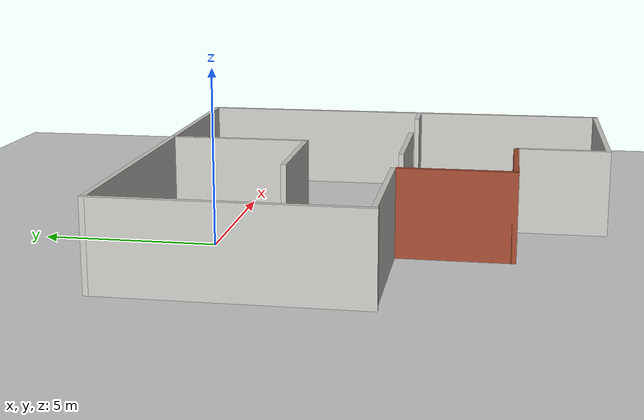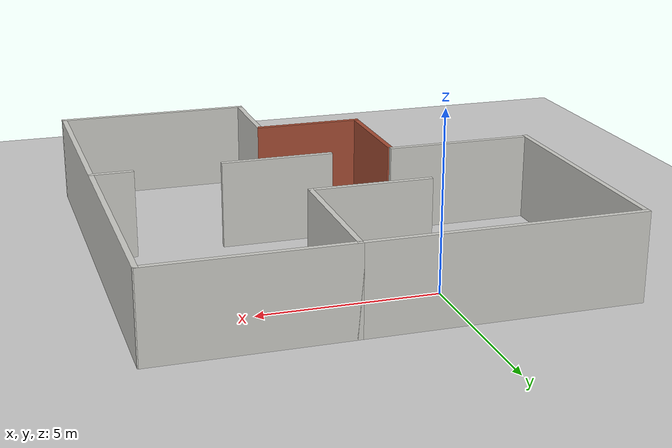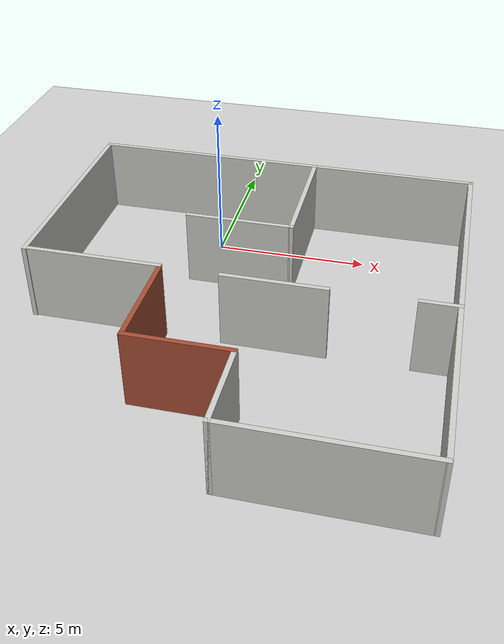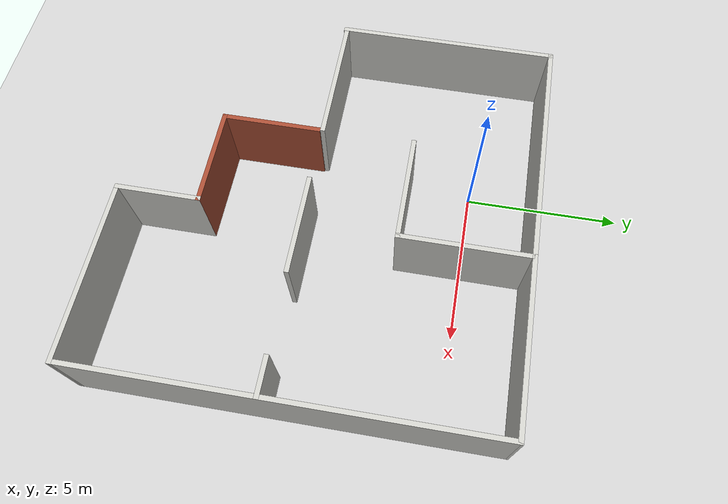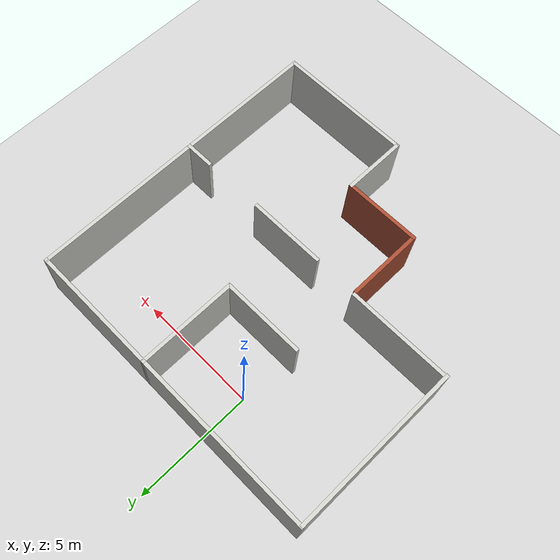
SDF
<sdf version="1.7">
 <world name="default">
  <light name="sun" type="directional">
   <pose>0 0 10 0 -0 0</pose>
   <diffuse>0.8 0.8 0.8 1</diffuse>
   <specular>0.2 0.2 0.2 1</specular>
   <attenuation>
    <range>1000</range>
    <constant>0.9</constant>
    <linear>0.01</linear>
    <quadratic>0.001</quadratic>
   </attenuation>
   <direction>-0.5 0.1 -0.9</direction>
   <spot><inner_angle>0</inner_angle><outer_angle>0</outer_angle><falloff>0</falloff></spot>
  </light>
  <model name="ground_plane">
   <static>1</static>
   <link name="link">
    <collision name="collision">
     <geometry><plane><normal>0 0 1</normal><size>100 100</size></plane></geometry>
     <surface>
      <contact><collide_bitmask>65535</collide_bitmask></contact>
      <friction><ode><mu>100</mu><mu2>50</mu2></ode></friction>
     </surface>
    </collision>
    <visual name="visual">
     <cast_shadows>0</cast_shadows>
     <geometry><plane><normal>0 0 1</normal><size>100 100</size></plane></geometry>
     <material>
      <script><uri>file://media/materials/scripts/gazebo.material</uri><name>Gazebo/Grey</name></script>
     </material>
    </visual>
   </link>
  </model>
  <gravity>0 0 -9.8</gravity>
  <magnetic_field>6e-06 2.3e-05 -4.2e-05</magnetic_field>
  <atmosphere type="adiabatic"/>
  <physics type="ode">
   <max_step_size>0.001</max_step_size>
   <real_time_factor>1</real_time_factor>
   <real_time_update_rate>1000</real_time_update_rate>
  </physics>
  <scene><ambient>0.4 0.4 0.4 1</ambient><background>0.7 0.7 0.7 1</background><shadows>1</shadows></scene>
  <spherical_coordinates>
   <surface_model>EARTH_WGS84</surface_model>
   <latitude_deg>0</latitude_deg>
   <longitude_deg>0</longitude_deg>
   <elevation>0</elevation>
   <heading_deg>0</heading_deg>
  </spherical_coordinates>
  <model name="robot_world">
   <link name="Wall_0">
    <pose>-0.568104 2.36 0 0 -0 0</pose>
    <visual name="Wall_0_Visual">
     <pose>0 0 1.25 0 -0 0</pose>
     <geometry><box><size>3.5 0.15 2.5</size></box></geometry>
     <material>
      <script><uri>file://media/materials/scripts/gazebo.material</uri><name>Gazebo/CeilingTiled</name></script>
      <ambient>0.760784 0.662745 0.627451 1</ambient>
      <shader type="pixel"/>
     </material>
     <meta><layer>0</layer></meta>
    </visual>
    <collision name="Wall_0_Collision">
     <pose>0 0 1.25 0 -0 0</pose>
     <geometry><box><size>3.5 0.15 2.5</size></box></geometry>
     <surface>
      <friction>
       <ode><mu>1</mu><mu2>1</mu2><fdir1>0 0 0</fdir1><slip1>0</slip1><slip2>0</slip2></ode>
       <torsional>
        <coefficient>1</coefficient>
        <patch_radius>0</patch_radius>
        <surface_radius>0</surface_radius>
        <use_patch_radius>1</use_patch_radius>
        <ode><slip>0</slip></ode>
       </torsional>
      </friction>
      <bounce><restitution_coefficient>0</restitution_coefficient><threshold>1e+06</threshold></bounce>
      <contact>
       <collide_without_contact>0</collide_without_contact>
       <collide_without_contact_bitmask>1</collide_without_contact_bitmask>
       <collide_bitmask>1</collide_bitmask>
       <ode>
        <soft_cfm>0</soft_cfm>
        <soft_erp>0.2</soft_erp>
        <kp>1e+13</kp>
        <kd>1</kd>
        <max_vel>0.01</max_vel>
        <min_depth>0</min_depth>
       </ode>
       <bullet>
        <split_impulse>1</split_impulse>
        <split_impulse_penetration_threshold>-0.01</split_impulse_penetration_threshold>
        <soft_cfm>0</soft_cfm>
        <soft_erp>0.2</soft_erp>
        <kp>1e+13</kp>
        <kd>1</kd>
       </bullet>
      </contact>
     </surface>
    </collision>
   </link>
   <link name="Wall_1">
    <pose>1.1069 4.41 0 0 -0 1.5708</pose>
    <visual name="Wall_1_Visual">
     <pose>0 0 1.25 0 -0 0</pose>
     <geometry><box><size>4.25 0.15 2.5</size></box></geometry>
     <material>
      <script><uri>file://media/materials/scripts/gazebo.material</uri><name>Gazebo/CeilingTiled</name></script>
      <ambient>0.760784 0.662745 0.627451 1</ambient>
      <shader type="pixel"/>
     </material>
     <meta><layer>0</layer></meta>
    </visual>
    <collision name="Wall_1_Collision">
     <pose>0 0 1.25 0 -0 0</pose>
     <geometry><box><size>4.25 0.15 2.5</size></box></geometry>
     <surface>
      <friction>
       <ode><mu>1</mu><mu2>1</mu2><fdir1>0 0 0</fdir1><slip1>0</slip1><slip2>0</slip2></ode>
       <torsional>
        <coefficient>1</coefficient>
        <patch_radius>0</patch_radius>
        <surface_radius>0</surface_radius>
        <use_patch_radius>1</use_patch_radius>
        <ode><slip>0</slip></ode>
       </torsional>
      </friction>
      <bounce><restitution_coefficient>0</restitution_coefficient><threshold>1e+06</threshold></bounce>
      <contact>
       <collide_without_contact>0</collide_without_contact>
       <collide_without_contact_bitmask>1</collide_without_contact_bitmask>
       <collide_bitmask>1</collide_bitmask>
       <ode>
        <soft_cfm>0</soft_cfm>
        <soft_erp>0.2</soft_erp>
        <kp>1e+13</kp>
        <kd>1</kd>
        <max_vel>0.01</max_vel>
        <min_depth>0</min_depth>
       </ode>
       <bullet>
        <split_impulse>1</split_impulse>
        <split_impulse_penetration_threshold>-0.01</split_impulse_penetration_threshold>
        <soft_cfm>0</soft_cfm>
        <soft_erp>0.2</soft_erp>
        <kp>1e+13</kp>
        <kd>1</kd>
       </bullet>
      </contact>
     </surface>
    </collision>
   </link>
   <link name="Wall_10">
    <pose>0.892896 -5.16 0 0 0 -1.5708</pose>
    <visual name="Wall_10_Visual">
     <pose>0 0 1.25 0 -0 0</pose>
     <geometry><box><size>2.75 0.15 2.5</size></box></geometry>
     <material>
      <script><uri>file://media/materials/scripts/gazebo.material</uri><name>Gazebo/CeilingTiled</name></script>
      <ambient>0.760784 0.662745 0.627451 1</ambient>
      <shader type="pixel"/>
     </material>
     <meta><layer>0</layer></meta>
    </visual>
    <collision name="Wall_10_Collision">
     <pose>0 0 1.25 0 -0 0</pose>
     <geometry><box><size>2.75 0.15 2.5</size></box></geometry>
     <surface>
      <friction>
       <ode><mu>1</mu><mu2>1</mu2><fdir1>0 0 0</fdir1><slip1>0</slip1><slip2>0</slip2></ode>
       <torsional>
        <coefficient>1</coefficient>
        <patch_radius>0</patch_radius>
        <surface_radius>0</surface_radius>
        <use_patch_radius>1</use_patch_radius>
        <ode><slip>0</slip></ode>
       </torsional>
      </friction>
      <bounce><restitution_coefficient>0</restitution_coefficient><threshold>1e+06</threshold></bounce>
      <contact>
       <collide_without_contact>0</collide_without_contact>
       <collide_without_contact_bitmask>1</collide_without_contact_bitmask>
       <collide_bitmask>1</collide_bitmask>
       <ode>
        <soft_cfm>0</soft_cfm>
        <soft_erp>0.2</soft_erp>
        <kp>1e+13</kp>
        <kd>1</kd>
        <max_vel>0.01</max_vel>
        <min_depth>0</min_depth>
       </ode>
       <bullet>
        <split_impulse>1</split_impulse>
        <split_impulse_penetration_threshold>-0.01</split_impulse_penetration_threshold>
        <soft_cfm>0</soft_cfm>
        <soft_erp>0.2</soft_erp>
        <kp>1e+13</kp>
        <kd>1</kd>
       </bullet>
      </contact>
     </surface>
    </collision>
   </link>
   <link name="Wall_11">
    <pose>3.6929 -6.46 0 0 -0 0</pose>
    <visual name="Wall_11_Visual">
     <pose>0 0 1.25 0 -0 0</pose>
     <geometry><box><size>5.75 0.15 2.5</size></box></geometry>
     <material>
      <script><uri>file://media/materials/scripts/gazebo.material</uri><name>Gazebo/CeilingTiled</name></script>
      <ambient>0.760784 0.662745 0.627451 1</ambient>
      <shader type="pixel"/>
     </material>
     <meta><layer>0</layer></meta>
    </visual>
    <collision name="Wall_11_Collision">
     <pose>0 0 1.25 0 -0 0</pose>
     <geometry><box><size>5.75 0.15 2.5</size></box></geometry>
     <surface>
      <friction>
       <ode><mu>1</mu><mu2>1</mu2><fdir1>0 0 0</fdir1><slip1>0</slip1><slip2>0</slip2></ode>
       <torsional>
        <coefficient>1</coefficient>
        <patch_radius>0</patch_radius>
        <surface_radius>0</surface_radius>
        <use_patch_radius>1</use_patch_radius>
        <ode><slip>0</slip></ode>
       </torsional>
      </friction>
      <bounce><restitution_coefficient>0</restitution_coefficient><threshold>1e+06</threshold></bounce>
      <contact>
       <collide_without_contact>0</collide_without_contact>
       <collide_without_contact_bitmask>1</collide_without_contact_bitmask>
       <collide_bitmask>1</collide_bitmask>
       <ode>
        <soft_cfm>0</soft_cfm>
        <soft_erp>0.2</soft_erp>
        <kp>1e+13</kp>
        <kd>1</kd>
        <max_vel>0.01</max_vel>
        <min_depth>0</min_depth>
       </ode>
       <bullet>
        <split_impulse>1</split_impulse>
        <split_impulse_penetration_threshold>-0.01</split_impulse_penetration_threshold>
        <soft_cfm>0</soft_cfm>
        <soft_erp>0.2</soft_erp>
        <kp>1e+13</kp>
        <kd>1</kd>
       </bullet>
      </contact>
     </surface>
    </collision>
   </link>
   <link name="Wall_14">
    <pose>3.7819 6.46 0 0 -0 0</pose>
    <visual name="Wall_14_Visual">
     <pose>0 0 1.25 0 -0 0</pose>
     <geometry><box><size>5.5 0.15 2.5</size></box></geometry>
     <material>
      <script><uri>file://media/materials/scripts/gazebo.material</uri><name>Gazebo/CeilingTiled</name></script>
      <ambient>0.760784 0.662745 0.627451 1</ambient>
      <shader type="pixel"/>
     </material>
     <meta><layer>0</layer></meta>
    </visual>
    <collision name="Wall_14_Collision">
     <pose>0 0 1.25 0 -0 0</pose>
     <geometry><box><size>5.5 0.15 2.5</size></box></geometry>
     <surface>
      <friction>
       <ode><mu>1</mu><mu2>1</mu2><fdir1>0 0 0</fdir1><slip1>0</slip1><slip2>0</slip2></ode>
       <torsional>
        <coefficient>1</coefficient>
        <patch_radius>0</patch_radius>
        <surface_radius>0</surface_radius>
        <use_patch_radius>1</use_patch_radius>
        <ode><slip>0</slip></ode>
       </torsional>
      </friction>
      <bounce><restitution_coefficient>0</restitution_coefficient><threshold>1e+06</threshold></bounce>
      <contact>
       <collide_without_contact>0</collide_without_contact>
       <collide_without_contact_bitmask>1</collide_without_contact_bitmask>
       <collide_bitmask>1</collide_bitmask>
       <ode>
        <soft_cfm>0</soft_cfm>
        <soft_erp>0.2</soft_erp>
        <kp>1e+13</kp>
        <kd>1</kd>
        <max_vel>0.01</max_vel>
        <min_depth>0</min_depth>
       </ode>
       <bullet>
        <split_impulse>1</split_impulse>
        <split_impulse_penetration_threshold>-0.01</split_impulse_penetration_threshold>
        <soft_cfm>0</soft_cfm>
        <soft_erp>0.2</soft_erp>
        <kp>1e+13</kp>
        <kd>1</kd>
       </bullet>
      </contact>
     </surface>
    </collision>
   </link>
   <link name="Wall_15">
    <pose>6.4749 0 0 0 0 -1.56801</pose>
    <visual name="Wall_15_Visual">
     <pose>0 0 1.25 0 -0 0</pose>
     <geometry><box><size>13.0698 0.15 2.5</size></box></geometry>
     <material>
      <script><uri>file://media/materials/scripts/gazebo.material</uri><name>Gazebo/CeilingTiled</name></script>
      <ambient>0.760784 0.662745 0.627451 1</ambient>
      <shader type="pixel"/>
     </material>
     <meta><layer>0</layer></meta>
    </visual>
    <collision name="Wall_15_Collision">
     <pose>0 0 1.25 0 -0 0</pose>
     <geometry><box><size>13.0698 0.15 2.5</size></box></geometry>
     <surface>
      <friction>
       <ode><mu>1</mu><mu2>1</mu2><fdir1>0 0 0</fdir1><slip1>0</slip1><slip2>0</slip2></ode>
       <torsional>
        <coefficient>1</coefficient>
        <patch_radius>0</patch_radius>
        <surface_radius>0</surface_radius>
        <use_patch_radius>1</use_patch_radius>
        <ode><slip>0</slip></ode>
       </torsional>
      </friction>
      <bounce><restitution_coefficient>0</restitution_coefficient><threshold>1e+06</threshold></bounce>
      <contact>
       <collide_without_contact>0</collide_without_contact>
       <collide_without_contact_bitmask>1</collide_without_contact_bitmask>
       <collide_bitmask>1</collide_bitmask>
       <ode>
        <soft_cfm>0</soft_cfm>
        <soft_erp>0.2</soft_erp>
        <kp>1e+13</kp>
        <kd>1</kd>
        <max_vel>0.01</max_vel>
        <min_depth>0</min_depth>
       </ode>
       <bullet>
        <split_impulse>1</split_impulse>
        <split_impulse_penetration_threshold>-0.01</split_impulse_penetration_threshold>
        <soft_cfm>0</soft_cfm>
        <soft_erp>0.2</soft_erp>
        <kp>1e+13</kp>
        <kd>1</kd>
       </bullet>
      </contact>
     </surface>
    </collision>
   </link>
   <link name="Wall_2">
    <pose>-2.6931 6.46 0 0 -0 3.14159</pose>
    <visual name="Wall_2_Visual">
     <pose>0 0 1.25 0 -0 0</pose>
     <geometry><box><size>7.75 0.15 2.5</size></box></geometry>
     <material>
      <script><uri>file://media/materials/scripts/gazebo.material</uri><name>Gazebo/CeilingTiled</name></script>
      <ambient>0.760784 0.662745 0.627451 1</ambient>
      <shader type="pixel"/>
     </material>
     <meta><layer>0</layer></meta>
    </visual>
    <collision name="Wall_2_Collision">
     <pose>0 0 1.25 0 -0 0</pose>
     <geometry><box><size>7.75 0.15 2.5</size></box></geometry>
     <surface>
      <friction>
       <ode><mu>1</mu><mu2>1</mu2><fdir1>0 0 0</fdir1><slip1>0</slip1><slip2>0</slip2></ode>
       <torsional>
        <coefficient>1</coefficient>
        <patch_radius>0</patch_radius>
        <surface_radius>0</surface_radius>
        <use_patch_radius>1</use_patch_radius>
        <ode><slip>0</slip></ode>
       </torsional>
      </friction>
      <bounce><restitution_coefficient>0</restitution_coefficient><threshold>1e+06</threshold></bounce>
      <contact>
       <collide_without_contact>0</collide_without_contact>
       <collide_without_contact_bitmask>1</collide_without_contact_bitmask>
       <collide_bitmask>1</collide_bitmask>
       <ode>
        <soft_cfm>0</soft_cfm>
        <soft_erp>0.2</soft_erp>
        <kp>1e+13</kp>
        <kd>1</kd>
        <max_vel>0.01</max_vel>
        <min_depth>0</min_depth>
       </ode>
       <bullet>
        <split_impulse>1</split_impulse>
        <split_impulse_penetration_threshold>-0.01</split_impulse_penetration_threshold>
        <soft_cfm>0</soft_cfm>
        <soft_erp>0.2</soft_erp>
        <kp>1e+13</kp>
        <kd>1</kd>
       </bullet>
      </contact>
     </surface>
    </collision>
   </link>
   <link name="Wall_26">
    <pose>1.2049 -0.653 0 0 -0 0</pose>
    <visual name="Wall_26_Visual">
     <pose>0 0 1.25 0 -0 0</pose>
     <geometry><box><size>3.25 0.15 2.5</size></box></geometry>
     <material>
      <script><uri>file://media/materials/scripts/gazebo.material</uri><name>Gazebo/CeilingTiled</name></script>
      <ambient>0.760784 0.662745 0.627451 1</ambient>
      <shader type="pixel"/>
     </material>
     <meta><layer>0</layer></meta>
    </visual>
    <collision name="Wall_26_Collision">
     <pose>0 0 1.25 0 -0 0</pose>
     <geometry><box><size>3.25 0.15 2.5</size></box></geometry>
     <surface>
      <friction>
       <ode><mu>1</mu><mu2>1</mu2><fdir1>0 0 0</fdir1><slip1>0</slip1><slip2>0</slip2></ode>
       <torsional>
        <coefficient>1</coefficient>
        <patch_radius>0</patch_radius>
        <surface_radius>0</surface_radius>
        <use_patch_radius>1</use_patch_radius>
        <ode><slip>0</slip></ode>
       </torsional>
      </friction>
      <bounce><restitution_coefficient>0</restitution_coefficient><threshold>1e+06</threshold></bounce>
      <contact>
       <collide_without_contact>0</collide_without_contact>
       <collide_without_contact_bitmask>1</collide_without_contact_bitmask>
       <collide_bitmask>1</collide_bitmask>
       <ode>
        <soft_cfm>0</soft_cfm>
        <soft_erp>0.2</soft_erp>
        <kp>1e+13</kp>
        <kd>1</kd>
        <max_vel>0.01</max_vel>
        <min_depth>0</min_depth>
       </ode>
       <bullet>
        <split_impulse>1</split_impulse>
        <split_impulse_penetration_threshold>-0.01</split_impulse_penetration_threshold>
        <soft_cfm>0</soft_cfm>
        <soft_erp>0.2</soft_erp>
        <kp>1e+13</kp>
        <kd>1</kd>
       </bullet>
      </contact>
     </surface>
    </collision>
   </link>
   <link name="Wall_3">
    <pose>-6.4931 2.91 0 0 0 -1.5708</pose>
    <visual name="Wall_3_Visual">
     <pose>0 0 1.25 0 -0 0</pose>
     <geometry><box><size>7.25 0.15 2.5</size></box></geometry>
     <material>
      <script><uri>file://media/materials/scripts/gazebo.material</uri><name>Gazebo/CeilingTiled</name></script>
      <ambient>0.760784 0.662745 0.627451 1</ambient>
      <shader type="pixel"/>
     </material>
     <meta><layer>0</layer></meta>
    </visual>
    <collision name="Wall_3_Collision">
     <pose>0 0 1.25 0 -0 0</pose>
     <geometry><box><size>7.25 0.15 2.5</size></box></geometry>
     <surface>
      <friction>
       <ode><mu>1</mu><mu2>1</mu2><fdir1>0 0 0</fdir1><slip1>0</slip1><slip2>0</slip2></ode>
       <torsional>
        <coefficient>1</coefficient>
        <patch_radius>0</patch_radius>
        <surface_radius>0</surface_radius>
        <use_patch_radius>1</use_patch_radius>
        <ode><slip>0</slip></ode>
       </torsional>
      </friction>
      <bounce><restitution_coefficient>0</restitution_coefficient><threshold>1e+06</threshold></bounce>
      <contact>
       <collide_without_contact>0</collide_without_contact>
       <collide_without_contact_bitmask>1</collide_without_contact_bitmask>
       <collide_bitmask>1</collide_bitmask>
       <ode>
        <soft_cfm>0</soft_cfm>
        <soft_erp>0.2</soft_erp>
        <kp>1e+13</kp>
        <kd>1</kd>
        <max_vel>0.01</max_vel>
        <min_depth>0</min_depth>
       </ode>
       <bullet>
        <split_impulse>1</split_impulse>
        <split_impulse_penetration_threshold>-0.01</split_impulse_penetration_threshold>
        <soft_cfm>0</soft_cfm>
        <soft_erp>0.2</soft_erp>
        <kp>1e+13</kp>
        <kd>1</kd>
       </bullet>
      </contact>
     </surface>
    </collision>
   </link>
   <link name="Wall_31">
    <pose>5.9239 -0.627 0 0 -0 0</pose>
    <visual name="Wall_31_Visual">
     <pose>0 0 1.25 0 -0 0</pose>
     <geometry><box><size>1.25 0.15 2.5</size></box></geometry>
     <material>
      <script><uri>file://media/materials/scripts/gazebo.material</uri><name>Gazebo/CeilingTiled</name></script>
      <ambient>0.760784 0.662745 0.627451 1</ambient>
      <shader type="pixel"/>
     </material>
     <meta><layer>0</layer></meta>
    </visual>
    <collision name="Wall_31_Collision">
     <pose>0 0 1.25 0 -0 0</pose>
     <geometry><box><size>1.25 0.15 2.5</size></box></geometry>
     <surface>
      <friction>
       <ode><mu>1</mu><mu2>1</mu2><fdir1>0 0 0</fdir1><slip1>0</slip1><slip2>0</slip2></ode>
       <torsional>
        <coefficient>1</coefficient>
        <patch_radius>0</patch_radius>
        <surface_radius>0</surface_radius>
        <use_patch_radius>1</use_patch_radius>
        <ode><slip>0</slip></ode>
       </torsional>
      </friction>
      <bounce><restitution_coefficient>0</restitution_coefficient><threshold>1e+06</threshold></bounce>
      <contact>
       <collide_without_contact>0</collide_without_contact>
       <collide_without_contact_bitmask>1</collide_without_contact_bitmask>
       <collide_bitmask>1</collide_bitmask>
       <ode>
        <soft_cfm>0</soft_cfm>
        <soft_erp>0.2</soft_erp>
        <kp>1e+13</kp>
        <kd>1</kd>
        <max_vel>0.01</max_vel>
        <min_depth>0</min_depth>
       </ode>
       <bullet>
        <split_impulse>1</split_impulse>
        <split_impulse_penetration_threshold>-0.01</split_impulse_penetration_threshold>
        <soft_cfm>0</soft_cfm>
        <soft_erp>0.2</soft_erp>
        <kp>1e+13</kp>
        <kd>1</kd>
       </bullet>
      </contact>
     </surface>
    </collision>
   </link>
   <link name="Wall_6_clone">
    <pose>-4.3053 -0.607442 0 0 -0 0</pose>
    <inertial>
     <mass>1</mass>
     <pose>-0.1 0 0 0 -0 0</pose>
     <inertia><ixx>1</ixx><ixy>0</ixy><ixz>0</ixz><iyy>1</iyy><iyz>0</iyz><izz>1</izz></inertia>
    </inertial>
    <visual name="Wall_6_Visual">
     <pose>0 0 1.25 0 -0 0</pose>
     <geometry><box><size>4.25 0.15 2.5</size></box></geometry>
     <material>
      <script><uri>file://media/materials/scripts/gazebo.material</uri><name>Gazebo/CeilingTiled</name></script>
      <ambient>0.761 0.663 0.627 1</ambient>
      <shader type="pixel"><normal_map>__default__</normal_map></shader>
      <diffuse>1 1 1 1</diffuse>
      <specular>0 0 0 1</specular>
      <emissive>0 0 0 1</emissive>
     </material>
     <meta><layer>0</layer></meta>
    </visual>
    <collision name="Wall_6_Collision">
     <pose>0 0 1.25 0 -0 0</pose>
     <geometry><box><size>4.25 0.15 2.5</size></box></geometry>
     <surface>
      <friction>
       <ode><mu>1</mu><mu2>1</mu2><fdir1>0 0 0</fdir1><slip1>0</slip1><slip2>0</slip2></ode>
       <torsional>
        <coefficient>1</coefficient>
        <patch_radius>0</patch_radius>
        <surface_radius>0</surface_radius>
        <use_patch_radius>1</use_patch_radius>
        <ode><slip>0</slip></ode>
       </torsional>
      </friction>
      <bounce><restitution_coefficient>0</restitution_coefficient><threshold>1e+06</threshold></bounce>
      <contact>
       <collide_without_contact>0</collide_without_contact>
       <collide_without_contact_bitmask>1</collide_without_contact_bitmask>
       <collide_bitmask>1</collide_bitmask>
       <ode>
        <soft_cfm>0</soft_cfm>
        <soft_erp>0.2</soft_erp>
        <kp>1e+13</kp>
        <kd>1</kd>
        <max_vel>0.01</max_vel>
        <min_depth>0</min_depth>
       </ode>
       <bullet>
        <split_impulse>1</split_impulse>
        <split_impulse_penetration_threshold>-0.01</split_impulse_penetration_threshold>
        <soft_cfm>0</soft_cfm>
        <soft_erp>0.2</soft_erp>
        <kp>1e+13</kp>
        <kd>1</kd>
       </bullet>
      </contact>
     </surface>
    </collision>
   </link>
   <link name="Wall_8">
    <pose>-2.2071 -2.31 0 0 0 -1.5708</pose>
    <visual name="Wall_8_Visual">
     <pose>0 0 1.25 0 -0 0</pose>
     <geometry><box><size>3.25 0.15 2.5</size></box></geometry>
     <material>
      <script><uri>file://media/materials/scripts/gazebo.material</uri><name>Gazebo/Bricks</name></script>
      <ambient>0.760784 0.662745 0.627451 1</ambient>
      <shader type="pixel"/>
     </material>
     <meta><layer>0</layer></meta>
    </visual>
    <collision name="Wall_8_Collision">
     <pose>0 0 1.25 0 -0 0</pose>
     <geometry><box><size>3.25 0.15 2.5</size></box></geometry>
     <surface>
      <friction>
       <ode><mu>1</mu><mu2>1</mu2><fdir1>0 0 0</fdir1><slip1>0</slip1><slip2>0</slip2></ode>
       <torsional>
        <coefficient>1</coefficient>
        <patch_radius>0</patch_radius>
        <surface_radius>0</surface_radius>
        <use_patch_radius>1</use_patch_radius>
        <ode><slip>0</slip></ode>
       </torsional>
      </friction>
      <bounce><restitution_coefficient>0</restitution_coefficient><threshold>1e+06</threshold></bounce>
      <contact>
       <collide_without_contact>0</collide_without_contact>
       <collide_without_contact_bitmask>1</collide_without_contact_bitmask>
       <collide_bitmask>1</collide_bitmask>
       <ode>
        <soft_cfm>0</soft_cfm>
        <soft_erp>0.2</soft_erp>
        <kp>1e+13</kp>
        <kd>1</kd>
        <max_vel>0.01</max_vel>
        <min_depth>0</min_depth>
       </ode>
       <bullet>
        <split_impulse>1</split_impulse>
        <split_impulse_penetration_threshold>-0.01</split_impulse_penetration_threshold>
        <soft_cfm>0</soft_cfm>
        <soft_erp>0.2</soft_erp>
        <kp>1e+13</kp>
        <kd>1</kd>
       </bullet>
      </contact>
     </surface>
    </collision>
   </link>
   <link name="Wall_9">
    <pose>-0.657104 -3.86 0 0 -0 0</pose>
    <visual name="Wall_9_Visual">
     <pose>0 0 1.25 0 -0 0</pose>
     <geometry><box><size>3.25 0.15 2.5</size></box></geometry>
     <material>
      <script><uri>file://media/materials/scripts/gazebo.material</uri><name>Gazebo/Bricks</name></script>
      <ambient>0.760784 0.662745 0.627451 1</ambient>
      <shader type="pixel"/>
     </material>
     <meta><layer>0</layer></meta>
    </visual>
    <collision name="Wall_9_Collision">
     <pose>0 0 1.25 0 -0 0</pose>
     <geometry><box><size>3.25 0.15 2.5</size></box></geometry>
     <surface>
      <friction>
       <ode><mu>1</mu><mu2>1</mu2><fdir1>0 0 0</fdir1><slip1>0</slip1><slip2>0</slip2></ode>
       <torsional>
        <coefficient>1</coefficient>
        <patch_radius>0</patch_radius>
        <surface_radius>0</surface_radius>
        <use_patch_radius>1</use_patch_radius>
        <ode><slip>0</slip></ode>
       </torsional>
      </friction>
      <bounce><restitution_coefficient>0</restitution_coefficient><threshold>1e+06</threshold></bounce>
      <contact>
       <collide_without_contact>0</collide_without_contact>
       <collide_without_contact_bitmask>1</collide_without_contact_bitmask>
       <collide_bitmask>1</collide_bitmask>
       <ode>
        <soft_cfm>0</soft_cfm>
        <soft_erp>0.2</soft_erp>
        <kp>1e+13</kp>
        <kd>1</kd>
        <max_vel>0.01</max_vel>
        <min_depth>0</min_depth>
       </ode>
       <bullet>
        <split_impulse>1</split_impulse>
        <split_impulse_penetration_threshold>-0.01</split_impulse_penetration_threshold>
        <soft_cfm>0</soft_cfm>
        <soft_erp>0.2</soft_erp>
        <kp>1e+13</kp>
        <kd>1</kd>
       </bullet>
      </contact>
     </surface>
    </collision>
   </link>
   <static>1</static>
   <pose>1.7821 -4.43623 0 0 -0 0</pose>
  </model>
 </world>
</sdf>
